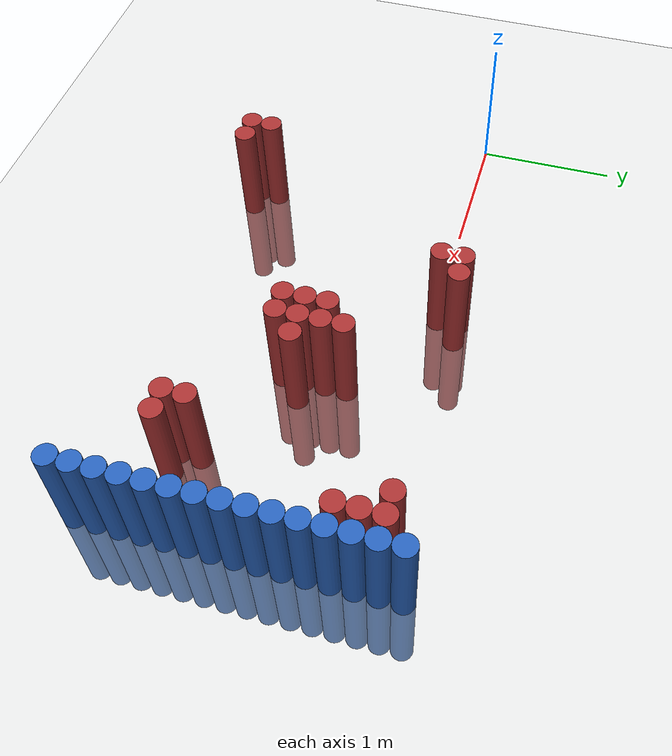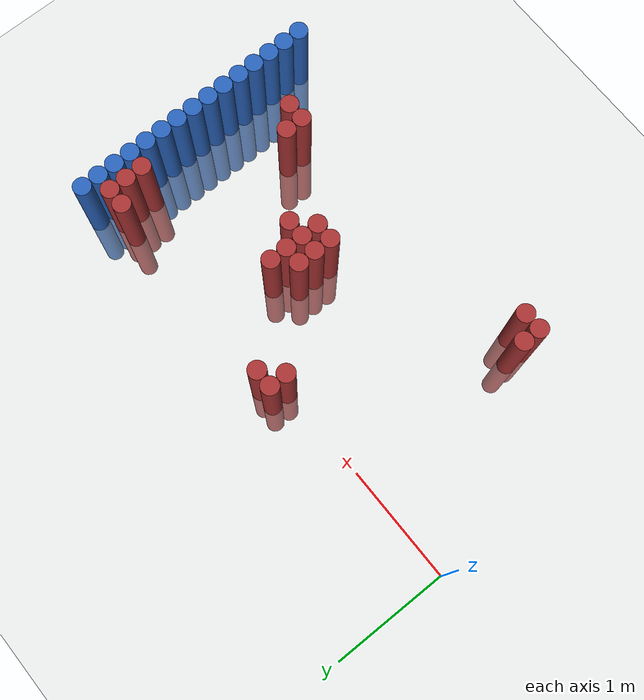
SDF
<sdf version="1.6">
 <world name="default">
  <model name="ground_plane">
   <static>1</static>
   <link name="link">
    <collision name="collision">
     <geometry><plane><normal>0 0 1</normal><size>100 100</size></plane></geometry>
     <surface><friction><ode><mu>100</mu><mu2>50</mu2></ode></friction></surface>
    </collision>
    <visual name="visual">
     <cast_shadows>0</cast_shadows>
     <geometry><plane><normal>0 0 1</normal><size>100 100</size></plane></geometry>
     <material>
      <script><uri>file://media/materials/scripts/gazebo.material</uri><name>Gazebo/Grey</name></script>
     </material>
    </visual>
   </link>
  </model>
  <model name="unit_cylinder_90">
   <static>1</static>
   <pose>3.925000 -1.775000 0.000000 0.000000 0.000000 0.000000</pose>
   <link name="link">
    <inertial>
     <mass>1</mass>
     <inertia><ixx>0.145833</ixx><ixy>0</ixy><ixz>0</ixz><iyy>0.145833</iyy><iyz>0</iyz><izz>0.125</izz></inertia>
    </inertial>
    <collision name="collision">
     <geometry><cylinder><radius>0.075000</radius><length>1.5</length></cylinder></geometry>
    </collision>
    <visual name="visual">
     <geometry><cylinder><radius>0.075000</radius><length>1.5</length></cylinder></geometry>
     <material>
      <ambient>0.152000 0.379000 0.720000 1</ambient>
      <diffuse>0.152000 0.379000 0.720000 1</diffuse>
     </material>
     <material>
      <script><name>Gazebo/Grey</name><uri>file://media/materials/scripts/gazebo.material</uri></script>
     </material>
    </visual>
   </link>
  </model>
  <model name="unit_cylinder_92">
   <static>1</static>
   <pose>3.925000 -1.625000 0.000000 0.000000 0.000000 0.000000</pose>
   <link name="link">
    <inertial>
     <mass>1</mass>
     <inertia><ixx>0.145833</ixx><ixy>0</ixy><ixz>0</ixz><iyy>0.145833</iyy><iyz>0</iyz><izz>0.125</izz></inertia>
    </inertial>
    <collision name="collision">
     <geometry><cylinder><radius>0.075000</radius><length>1.5</length></cylinder></geometry>
    </collision>
    <visual name="visual">
     <geometry><cylinder><radius>0.075000</radius><length>1.5</length></cylinder></geometry>
     <material>
      <ambient>0.152000 0.379000 0.720000 1</ambient>
      <diffuse>0.152000 0.379000 0.720000 1</diffuse>
     </material>
     <material>
      <script><name>Gazebo/Grey</name><uri>file://media/materials/scripts/gazebo.material</uri></script>
     </material>
    </visual>
   </link>
  </model>
  <model name="unit_cylinder_94">
   <static>1</static>
   <pose>3.925000 -1.475000 0.000000 0.000000 0.000000 0.000000</pose>
   <link name="link">
    <inertial>
     <mass>1</mass>
     <inertia><ixx>0.145833</ixx><ixy>0</ixy><ixz>0</ixz><iyy>0.145833</iyy><iyz>0</iyz><izz>0.125</izz></inertia>
    </inertial>
    <collision name="collision">
     <geometry><cylinder><radius>0.075000</radius><length>1.5</length></cylinder></geometry>
    </collision>
    <visual name="visual">
     <geometry><cylinder><radius>0.075000</radius><length>1.5</length></cylinder></geometry>
     <material>
      <ambient>0.152000 0.379000 0.720000 1</ambient>
      <diffuse>0.152000 0.379000 0.720000 1</diffuse>
     </material>
     <material>
      <script><name>Gazebo/Grey</name><uri>file://media/materials/scripts/gazebo.material</uri></script>
     </material>
    </visual>
   </link>
  </model>
  <model name="unit_cylinder_96">
   <static>1</static>
   <pose>3.925000 -1.325000 0.000000 0.000000 0.000000 0.000000</pose>
   <link name="link">
    <inertial>
     <mass>1</mass>
     <inertia><ixx>0.145833</ixx><ixy>0</ixy><ixz>0</ixz><iyy>0.145833</iyy><iyz>0</iyz><izz>0.125</izz></inertia>
    </inertial>
    <collision name="collision">
     <geometry><cylinder><radius>0.075000</radius><length>1.5</length></cylinder></geometry>
    </collision>
    <visual name="visual">
     <geometry><cylinder><radius>0.075000</radius><length>1.5</length></cylinder></geometry>
     <material>
      <ambient>0.152000 0.379000 0.720000 1</ambient>
      <diffuse>0.152000 0.379000 0.720000 1</diffuse>
     </material>
     <material>
      <script><name>Gazebo/Grey</name><uri>file://media/materials/scripts/gazebo.material</uri></script>
     </material>
    </visual>
   </link>
  </model>
  <model name="unit_cylinder_98">
   <static>1</static>
   <pose>3.925000 -1.175000 0.000000 0.000000 0.000000 0.000000</pose>
   <link name="link">
    <inertial>
     <mass>1</mass>
     <inertia><ixx>0.145833</ixx><ixy>0</ixy><ixz>0</ixz><iyy>0.145833</iyy><iyz>0</iyz><izz>0.125</izz></inertia>
    </inertial>
    <collision name="collision">
     <geometry><cylinder><radius>0.075000</radius><length>1.5</length></cylinder></geometry>
    </collision>
    <visual name="visual">
     <geometry><cylinder><radius>0.075000</radius><length>1.5</length></cylinder></geometry>
     <material>
      <ambient>0.152000 0.379000 0.720000 1</ambient>
      <diffuse>0.152000 0.379000 0.720000 1</diffuse>
     </material>
     <material>
      <script><name>Gazebo/Grey</name><uri>file://media/materials/scripts/gazebo.material</uri></script>
     </material>
    </visual>
   </link>
  </model>
  <model name="unit_cylinder_100">
   <static>1</static>
   <pose>3.925000 -1.025000 0.000000 0.000000 0.000000 0.000000</pose>
   <link name="link">
    <inertial>
     <mass>1</mass>
     <inertia><ixx>0.145833</ixx><ixy>0</ixy><ixz>0</ixz><iyy>0.145833</iyy><iyz>0</iyz><izz>0.125</izz></inertia>
    </inertial>
    <collision name="collision">
     <geometry><cylinder><radius>0.075000</radius><length>1.5</length></cylinder></geometry>
    </collision>
    <visual name="visual">
     <geometry><cylinder><radius>0.075000</radius><length>1.5</length></cylinder></geometry>
     <material>
      <ambient>0.152000 0.379000 0.720000 1</ambient>
      <diffuse>0.152000 0.379000 0.720000 1</diffuse>
     </material>
     <material>
      <script><name>Gazebo/Grey</name><uri>file://media/materials/scripts/gazebo.material</uri></script>
     </material>
    </visual>
   </link>
  </model>
  <model name="unit_cylinder_102">
   <static>1</static>
   <pose>3.925000 -0.875000 0.000000 0.000000 0.000000 0.000000</pose>
   <link name="link">
    <inertial>
     <mass>1</mass>
     <inertia><ixx>0.145833</ixx><ixy>0</ixy><ixz>0</ixz><iyy>0.145833</iyy><iyz>0</iyz><izz>0.125</izz></inertia>
    </inertial>
    <collision name="collision">
     <geometry><cylinder><radius>0.075000</radius><length>1.5</length></cylinder></geometry>
    </collision>
    <visual name="visual">
     <geometry><cylinder><radius>0.075000</radius><length>1.5</length></cylinder></geometry>
     <material>
      <ambient>0.152000 0.379000 0.720000 1</ambient>
      <diffuse>0.152000 0.379000 0.720000 1</diffuse>
     </material>
     <material>
      <script><name>Gazebo/Grey</name><uri>file://media/materials/scripts/gazebo.material</uri></script>
     </material>
    </visual>
   </link>
  </model>
  <model name="unit_cylinder_104">
   <static>1</static>
   <pose>3.925000 -0.725000 0.000000 0.000000 0.000000 0.000000</pose>
   <link name="link">
    <inertial>
     <mass>1</mass>
     <inertia><ixx>0.145833</ixx><ixy>0</ixy><ixz>0</ixz><iyy>0.145833</iyy><iyz>0</iyz><izz>0.125</izz></inertia>
    </inertial>
    <collision name="collision">
     <geometry><cylinder><radius>0.075000</radius><length>1.5</length></cylinder></geometry>
    </collision>
    <visual name="visual">
     <geometry><cylinder><radius>0.075000</radius><length>1.5</length></cylinder></geometry>
     <material>
      <ambient>0.152000 0.379000 0.720000 1</ambient>
      <diffuse>0.152000 0.379000 0.720000 1</diffuse>
     </material>
     <material>
      <script><name>Gazebo/Grey</name><uri>file://media/materials/scripts/gazebo.material</uri></script>
     </material>
    </visual>
   </link>
  </model>
  <model name="unit_cylinder_106">
   <static>1</static>
   <pose>3.925000 -0.575000 0.000000 0.000000 0.000000 0.000000</pose>
   <link name="link">
    <inertial>
     <mass>1</mass>
     <inertia><ixx>0.145833</ixx><ixy>0</ixy><ixz>0</ixz><iyy>0.145833</iyy><iyz>0</iyz><izz>0.125</izz></inertia>
    </inertial>
    <collision name="collision">
     <geometry><cylinder><radius>0.075000</radius><length>1.5</length></cylinder></geometry>
    </collision>
    <visual name="visual">
     <geometry><cylinder><radius>0.075000</radius><length>1.5</length></cylinder></geometry>
     <material>
      <ambient>0.152000 0.379000 0.720000 1</ambient>
      <diffuse>0.152000 0.379000 0.720000 1</diffuse>
     </material>
     <material>
      <script><name>Gazebo/Grey</name><uri>file://media/materials/scripts/gazebo.material</uri></script>
     </material>
    </visual>
   </link>
  </model>
  <model name="unit_cylinder_108">
   <static>1</static>
   <pose>3.925000 -0.425000 0.000000 0.000000 0.000000 0.000000</pose>
   <link name="link">
    <inertial>
     <mass>1</mass>
     <inertia><ixx>0.145833</ixx><ixy>0</ixy><ixz>0</ixz><iyy>0.145833</iyy><iyz>0</iyz><izz>0.125</izz></inertia>
    </inertial>
    <collision name="collision">
     <geometry><cylinder><radius>0.075000</radius><length>1.5</length></cylinder></geometry>
    </collision>
    <visual name="visual">
     <geometry><cylinder><radius>0.075000</radius><length>1.5</length></cylinder></geometry>
     <material>
      <ambient>0.152000 0.379000 0.720000 1</ambient>
      <diffuse>0.152000 0.379000 0.720000 1</diffuse>
     </material>
     <material>
      <script><name>Gazebo/Grey</name><uri>file://media/materials/scripts/gazebo.material</uri></script>
     </material>
    </visual>
   </link>
  </model>
  <model name="unit_cylinder_110">
   <static>1</static>
   <pose>3.925000 -0.275000 0.000000 0.000000 0.000000 0.000000</pose>
   <link name="link">
    <inertial>
     <mass>1</mass>
     <inertia><ixx>0.145833</ixx><ixy>0</ixy><ixz>0</ixz><iyy>0.145833</iyy><iyz>0</iyz><izz>0.125</izz></inertia>
    </inertial>
    <collision name="collision">
     <geometry><cylinder><radius>0.075000</radius><length>1.5</length></cylinder></geometry>
    </collision>
    <visual name="visual">
     <geometry><cylinder><radius>0.075000</radius><length>1.5</length></cylinder></geometry>
     <material>
      <ambient>0.152000 0.379000 0.720000 1</ambient>
      <diffuse>0.152000 0.379000 0.720000 1</diffuse>
     </material>
     <material>
      <script><name>Gazebo/Grey</name><uri>file://media/materials/scripts/gazebo.material</uri></script>
     </material>
    </visual>
   </link>
  </model>
  <model name="unit_cylinder_112">
   <static>1</static>
   <pose>3.925000 -0.125000 0.000000 0.000000 0.000000 0.000000</pose>
   <link name="link">
    <inertial>
     <mass>1</mass>
     <inertia><ixx>0.145833</ixx><ixy>0</ixy><ixz>0</ixz><iyy>0.145833</iyy><iyz>0</iyz><izz>0.125</izz></inertia>
    </inertial>
    <collision name="collision">
     <geometry><cylinder><radius>0.075000</radius><length>1.5</length></cylinder></geometry>
    </collision>
    <visual name="visual">
     <geometry><cylinder><radius>0.075000</radius><length>1.5</length></cylinder></geometry>
     <material>
      <ambient>0.152000 0.379000 0.720000 1</ambient>
      <diffuse>0.152000 0.379000 0.720000 1</diffuse>
     </material>
     <material>
      <script><name>Gazebo/Grey</name><uri>file://media/materials/scripts/gazebo.material</uri></script>
     </material>
    </visual>
   </link>
  </model>
  <model name="unit_cylinder_114">
   <static>1</static>
   <pose>3.925000 0.025000 0.000000 0.000000 0.000000 0.000000</pose>
   <link name="link">
    <inertial>
     <mass>1</mass>
     <inertia><ixx>0.145833</ixx><ixy>0</ixy><ixz>0</ixz><iyy>0.145833</iyy><iyz>0</iyz><izz>0.125</izz></inertia>
    </inertial>
    <collision name="collision">
     <geometry><cylinder><radius>0.075000</radius><length>1.5</length></cylinder></geometry>
    </collision>
    <visual name="visual">
     <geometry><cylinder><radius>0.075000</radius><length>1.5</length></cylinder></geometry>
     <material>
      <ambient>0.152000 0.379000 0.720000 1</ambient>
      <diffuse>0.152000 0.379000 0.720000 1</diffuse>
     </material>
     <material>
      <script><name>Gazebo/Grey</name><uri>file://media/materials/scripts/gazebo.material</uri></script>
     </material>
    </visual>
   </link>
  </model>
  <model name="unit_cylinder_116">
   <static>1</static>
   <pose>3.925000 0.175000 0.000000 0.000000 0.000000 0.000000</pose>
   <link name="link">
    <inertial>
     <mass>1</mass>
     <inertia><ixx>0.145833</ixx><ixy>0</ixy><ixz>0</ixz><iyy>0.145833</iyy><iyz>0</iyz><izz>0.125</izz></inertia>
    </inertial>
    <collision name="collision">
     <geometry><cylinder><radius>0.075000</radius><length>1.5</length></cylinder></geometry>
    </collision>
    <visual name="visual">
     <geometry><cylinder><radius>0.075000</radius><length>1.5</length></cylinder></geometry>
     <material>
      <ambient>0.152000 0.379000 0.720000 1</ambient>
      <diffuse>0.152000 0.379000 0.720000 1</diffuse>
     </material>
     <material>
      <script><name>Gazebo/Grey</name><uri>file://media/materials/scripts/gazebo.material</uri></script>
     </material>
    </visual>
   </link>
  </model>
  <model name="unit_cylinder_118">
   <static>1</static>
   <pose>3.925000 0.325000 0.000000 0.000000 0.000000 0.000000</pose>
   <link name="link">
    <inertial>
     <mass>1</mass>
     <inertia><ixx>0.145833</ixx><ixy>0</ixy><ixz>0</ixz><iyy>0.145833</iyy><iyz>0</iyz><izz>0.125</izz></inertia>
    </inertial>
    <collision name="collision">
     <geometry><cylinder><radius>0.075000</radius><length>1.5</length></cylinder></geometry>
    </collision>
    <visual name="visual">
     <geometry><cylinder><radius>0.075000</radius><length>1.5</length></cylinder></geometry>
     <material>
      <ambient>0.152000 0.379000 0.720000 1</ambient>
      <diffuse>0.152000 0.379000 0.720000 1</diffuse>
     </material>
     <material>
      <script><name>Gazebo/Grey</name><uri>file://media/materials/scripts/gazebo.material</uri></script>
     </material>
    </visual>
   </link>
  </model>
  <model name="unit_cylinder_344">
   <static>1</static>
   <pose>0.925000 -1.625000 0.000000 0.000000 0.000000 0.000000</pose>
   <link name="link">
    <inertial>
     <mass>1</mass>
     <inertia><ixx>0.145833</ixx><ixy>0</ixy><ixz>0</ixz><iyy>0.145833</iyy><iyz>0</iyz><izz>0.125</izz></inertia>
    </inertial>
    <collision name="collision">
     <geometry><cylinder><radius>0.075000</radius><length>1.5</length></cylinder></geometry>
    </collision>
    <visual name="visual">
     <geometry><cylinder><radius>0.075000</radius><length>1.5</length></cylinder></geometry>
     <material>
      <ambient>0.648000 0.192000 0.192000 1</ambient>
      <diffuse>0.648000 0.192000 0.192000 1</diffuse>
     </material>
     <material>
      <script><name>Gazebo/Grey</name><uri>file://media/materials/scripts/gazebo.material</uri></script>
     </material>
    </visual>
   </link>
  </model>
  <model name="unit_cylinder_345">
   <static>1</static>
   <pose>0.925000 -1.475000 0.000000 0.000000 0.000000 0.000000</pose>
   <link name="link">
    <inertial>
     <mass>1</mass>
     <inertia><ixx>0.145833</ixx><ixy>0</ixy><ixz>0</ixz><iyy>0.145833</iyy><iyz>0</iyz><izz>0.125</izz></inertia>
    </inertial>
    <collision name="collision">
     <geometry><cylinder><radius>0.075000</radius><length>1.5</length></cylinder></geometry>
    </collision>
    <visual name="visual">
     <geometry><cylinder><radius>0.075000</radius><length>1.5</length></cylinder></geometry>
     <material>
      <ambient>0.648000 0.192000 0.192000 1</ambient>
      <diffuse>0.648000 0.192000 0.192000 1</diffuse>
     </material>
     <material>
      <script><name>Gazebo/Grey</name><uri>file://media/materials/scripts/gazebo.material</uri></script>
     </material>
    </visual>
   </link>
  </model>
  <model name="unit_cylinder_347">
   <static>1</static>
   <pose>1.075000 -1.625000 0.000000 0.000000 0.000000 0.000000</pose>
   <link name="link">
    <inertial>
     <mass>1</mass>
     <inertia><ixx>0.145833</ixx><ixy>0</ixy><ixz>0</ixz><iyy>0.145833</iyy><iyz>0</iyz><izz>0.125</izz></inertia>
    </inertial>
    <collision name="collision">
     <geometry><cylinder><radius>0.075000</radius><length>1.5</length></cylinder></geometry>
    </collision>
    <visual name="visual">
     <geometry><cylinder><radius>0.075000</radius><length>1.5</length></cylinder></geometry>
     <material>
      <ambient>0.648000 0.192000 0.192000 1</ambient>
      <diffuse>0.648000 0.192000 0.192000 1</diffuse>
     </material>
     <material>
      <script><name>Gazebo/Grey</name><uri>file://media/materials/scripts/gazebo.material</uri></script>
     </material>
    </visual>
   </link>
  </model>
  <model name="unit_cylinder_351">
   <static>1</static>
   <pose>1.825000 0.025000 0.000000 0.000000 0.000000 0.000000</pose>
   <link name="link">
    <inertial>
     <mass>1</mass>
     <inertia><ixx>0.145833</ixx><ixy>0</ixy><ixz>0</ixz><iyy>0.145833</iyy><iyz>0</iyz><izz>0.125</izz></inertia>
    </inertial>
    <collision name="collision">
     <geometry><cylinder><radius>0.075000</radius><length>1.5</length></cylinder></geometry>
    </collision>
    <visual name="visual">
     <geometry><cylinder><radius>0.075000</radius><length>1.5</length></cylinder></geometry>
     <material>
      <ambient>0.648000 0.192000 0.192000 1</ambient>
      <diffuse>0.648000 0.192000 0.192000 1</diffuse>
     </material>
     <material>
      <script><name>Gazebo/Grey</name><uri>file://media/materials/scripts/gazebo.material</uri></script>
     </material>
    </visual>
   </link>
  </model>
  <model name="unit_cylinder_352">
   <static>1</static>
   <pose>1.825000 0.175000 0.000000 0.000000 0.000000 0.000000</pose>
   <link name="link">
    <inertial>
     <mass>1</mass>
     <inertia><ixx>0.145833</ixx><ixy>0</ixy><ixz>0</ixz><iyy>0.145833</iyy><iyz>0</iyz><izz>0.125</izz></inertia>
    </inertial>
    <collision name="collision">
     <geometry><cylinder><radius>0.075000</radius><length>1.5</length></cylinder></geometry>
    </collision>
    <visual name="visual">
     <geometry><cylinder><radius>0.075000</radius><length>1.5</length></cylinder></geometry>
     <material>
      <ambient>0.648000 0.192000 0.192000 1</ambient>
      <diffuse>0.648000 0.192000 0.192000 1</diffuse>
     </material>
     <material>
      <script><name>Gazebo/Grey</name><uri>file://media/materials/scripts/gazebo.material</uri></script>
     </material>
    </visual>
   </link>
  </model>
  <model name="unit_cylinder_353">
   <static>1</static>
   <pose>1.975000 0.175000 0.000000 0.000000 0.000000 0.000000</pose>
   <link name="link">
    <inertial>
     <mass>1</mass>
     <inertia><ixx>0.145833</ixx><ixy>0</ixy><ixz>0</ixz><iyy>0.145833</iyy><iyz>0</iyz><izz>0.125</izz></inertia>
    </inertial>
    <collision name="collision">
     <geometry><cylinder><radius>0.075000</radius><length>1.5</length></cylinder></geometry>
    </collision>
    <visual name="visual">
     <geometry><cylinder><radius>0.075000</radius><length>1.5</length></cylinder></geometry>
     <material>
      <ambient>0.648000 0.192000 0.192000 1</ambient>
      <diffuse>0.648000 0.192000 0.192000 1</diffuse>
     </material>
     <material>
      <script><name>Gazebo/Grey</name><uri>file://media/materials/scripts/gazebo.material</uri></script>
     </material>
    </visual>
   </link>
  </model>
  <model name="unit_cylinder_359">
   <static>1</static>
   <pose>2.425000 -0.875000 0.000000 0.000000 0.000000 0.000000</pose>
   <link name="link">
    <inertial>
     <mass>1</mass>
     <inertia><ixx>0.145833</ixx><ixy>0</ixy><ixz>0</ixz><iyy>0.145833</iyy><iyz>0</iyz><izz>0.125</izz></inertia>
    </inertial>
    <collision name="collision">
     <geometry><cylinder><radius>0.075000</radius><length>1.5</length></cylinder></geometry>
    </collision>
    <visual name="visual">
     <geometry><cylinder><radius>0.075000</radius><length>1.5</length></cylinder></geometry>
     <material>
      <ambient>0.648000 0.192000 0.192000 1</ambient>
      <diffuse>0.648000 0.192000 0.192000 1</diffuse>
     </material>
     <material>
      <script><name>Gazebo/Grey</name><uri>file://media/materials/scripts/gazebo.material</uri></script>
     </material>
    </visual>
   </link>
  </model>
  <model name="unit_cylinder_360">
   <static>1</static>
   <pose>2.425000 -0.725000 0.000000 0.000000 0.000000 0.000000</pose>
   <link name="link">
    <inertial>
     <mass>1</mass>
     <inertia><ixx>0.145833</ixx><ixy>0</ixy><ixz>0</ixz><iyy>0.145833</iyy><iyz>0</iyz><izz>0.125</izz></inertia>
    </inertial>
    <collision name="collision">
     <geometry><cylinder><radius>0.075000</radius><length>1.5</length></cylinder></geometry>
    </collision>
    <visual name="visual">
     <geometry><cylinder><radius>0.075000</radius><length>1.5</length></cylinder></geometry>
     <material>
      <ambient>0.648000 0.192000 0.192000 1</ambient>
      <diffuse>0.648000 0.192000 0.192000 1</diffuse>
     </material>
     <material>
      <script><name>Gazebo/Grey</name><uri>file://media/materials/scripts/gazebo.material</uri></script>
     </material>
    </visual>
   </link>
  </model>
  <model name="unit_cylinder_361">
   <static>1</static>
   <pose>2.425000 -0.575000 0.000000 0.000000 0.000000 0.000000</pose>
   <link name="link">
    <inertial>
     <mass>1</mass>
     <inertia><ixx>0.145833</ixx><ixy>0</ixy><ixz>0</ixz><iyy>0.145833</iyy><iyz>0</iyz><izz>0.125</izz></inertia>
    </inertial>
    <collision name="collision">
     <geometry><cylinder><radius>0.075000</radius><length>1.5</length></cylinder></geometry>
    </collision>
    <visual name="visual">
     <geometry><cylinder><radius>0.075000</radius><length>1.5</length></cylinder></geometry>
     <material>
      <ambient>0.648000 0.192000 0.192000 1</ambient>
      <diffuse>0.648000 0.192000 0.192000 1</diffuse>
     </material>
     <material>
      <script><name>Gazebo/Grey</name><uri>file://media/materials/scripts/gazebo.material</uri></script>
     </material>
    </visual>
   </link>
  </model>
  <model name="unit_cylinder_365">
   <static>1</static>
   <pose>2.575000 -0.875000 0.000000 0.000000 0.000000 0.000000</pose>
   <link name="link">
    <inertial>
     <mass>1</mass>
     <inertia><ixx>0.145833</ixx><ixy>0</ixy><ixz>0</ixz><iyy>0.145833</iyy><iyz>0</iyz><izz>0.125</izz></inertia>
    </inertial>
    <collision name="collision">
     <geometry><cylinder><radius>0.075000</radius><length>1.5</length></cylinder></geometry>
    </collision>
    <visual name="visual">
     <geometry><cylinder><radius>0.075000</radius><length>1.5</length></cylinder></geometry>
     <material>
      <ambient>0.648000 0.192000 0.192000 1</ambient>
      <diffuse>0.648000 0.192000 0.192000 1</diffuse>
     </material>
     <material>
      <script><name>Gazebo/Grey</name><uri>file://media/materials/scripts/gazebo.material</uri></script>
     </material>
    </visual>
   </link>
  </model>
  <model name="unit_cylinder_366">
   <static>1</static>
   <pose>2.575000 -0.725000 0.000000 0.000000 0.000000 0.000000</pose>
   <link name="link">
    <inertial>
     <mass>1</mass>
     <inertia><ixx>0.145833</ixx><ixy>0</ixy><ixz>0</ixz><iyy>0.145833</iyy><iyz>0</iyz><izz>0.125</izz></inertia>
    </inertial>
    <collision name="collision">
     <geometry><cylinder><radius>0.075000</radius><length>1.5</length></cylinder></geometry>
    </collision>
    <visual name="visual">
     <geometry><cylinder><radius>0.075000</radius><length>1.5</length></cylinder></geometry>
     <material>
      <ambient>0.648000 0.192000 0.192000 1</ambient>
      <diffuse>0.648000 0.192000 0.192000 1</diffuse>
     </material>
     <material>
      <script><name>Gazebo/Grey</name><uri>file://media/materials/scripts/gazebo.material</uri></script>
     </material>
    </visual>
   </link>
  </model>
  <model name="unit_cylinder_367">
   <static>1</static>
   <pose>2.575000 -0.575000 0.000000 0.000000 0.000000 0.000000</pose>
   <link name="link">
    <inertial>
     <mass>1</mass>
     <inertia><ixx>0.145833</ixx><ixy>0</ixy><ixz>0</ixz><iyy>0.145833</iyy><iyz>0</iyz><izz>0.125</izz></inertia>
    </inertial>
    <collision name="collision">
     <geometry><cylinder><radius>0.075000</radius><length>1.5</length></cylinder></geometry>
    </collision>
    <visual name="visual">
     <geometry><cylinder><radius>0.075000</radius><length>1.5</length></cylinder></geometry>
     <material>
      <ambient>0.648000 0.192000 0.192000 1</ambient>
      <diffuse>0.648000 0.192000 0.192000 1</diffuse>
     </material>
     <material>
      <script><name>Gazebo/Grey</name><uri>file://media/materials/scripts/gazebo.material</uri></script>
     </material>
    </visual>
   </link>
  </model>
  <model name="unit_cylinder_368">
   <static>1</static>
   <pose>2.575000 -0.425000 0.000000 0.000000 0.000000 0.000000</pose>
   <link name="link">
    <inertial>
     <mass>1</mass>
     <inertia><ixx>0.145833</ixx><ixy>0</ixy><ixz>0</ixz><iyy>0.145833</iyy><iyz>0</iyz><izz>0.125</izz></inertia>
    </inertial>
    <collision name="collision">
     <geometry><cylinder><radius>0.075000</radius><length>1.5</length></cylinder></geometry>
    </collision>
    <visual name="visual">
     <geometry><cylinder><radius>0.075000</radius><length>1.5</length></cylinder></geometry>
     <material>
      <ambient>0.648000 0.192000 0.192000 1</ambient>
      <diffuse>0.648000 0.192000 0.192000 1</diffuse>
     </material>
     <material>
      <script><name>Gazebo/Grey</name><uri>file://media/materials/scripts/gazebo.material</uri></script>
     </material>
    </visual>
   </link>
  </model>
  <model name="unit_cylinder_370">
   <static>1</static>
   <pose>2.725000 -0.725000 0.000000 0.000000 0.000000 0.000000</pose>
   <link name="link">
    <inertial>
     <mass>1</mass>
     <inertia><ixx>0.145833</ixx><ixy>0</ixy><ixz>0</ixz><iyy>0.145833</iyy><iyz>0</iyz><izz>0.125</izz></inertia>
    </inertial>
    <collision name="collision">
     <geometry><cylinder><radius>0.075000</radius><length>1.5</length></cylinder></geometry>
    </collision>
    <visual name="visual">
     <geometry><cylinder><radius>0.075000</radius><length>1.5</length></cylinder></geometry>
     <material>
      <ambient>0.648000 0.192000 0.192000 1</ambient>
      <diffuse>0.648000 0.192000 0.192000 1</diffuse>
     </material>
     <material>
      <script><name>Gazebo/Grey</name><uri>file://media/materials/scripts/gazebo.material</uri></script>
     </material>
    </visual>
   </link>
  </model>
  <model name="unit_cylinder_375">
   <static>1</static>
   <pose>3.325000 -1.325000 0.000000 0.000000 0.000000 0.000000</pose>
   <link name="link">
    <inertial>
     <mass>1</mass>
     <inertia><ixx>0.145833</ixx><ixy>0</ixy><ixz>0</ixz><iyy>0.145833</iyy><iyz>0</iyz><izz>0.125</izz></inertia>
    </inertial>
    <collision name="collision">
     <geometry><cylinder><radius>0.075000</radius><length>1.5</length></cylinder></geometry>
    </collision>
    <visual name="visual">
     <geometry><cylinder><radius>0.075000</radius><length>1.5</length></cylinder></geometry>
     <material>
      <ambient>0.648000 0.192000 0.192000 1</ambient>
      <diffuse>0.648000 0.192000 0.192000 1</diffuse>
     </material>
     <material>
      <script><name>Gazebo/Grey</name><uri>file://media/materials/scripts/gazebo.material</uri></script>
     </material>
    </visual>
   </link>
  </model>
  <model name="unit_cylinder_376">
   <static>1</static>
   <pose>3.325000 -1.175000 0.000000 0.000000 0.000000 0.000000</pose>
   <link name="link">
    <inertial>
     <mass>1</mass>
     <inertia><ixx>0.145833</ixx><ixy>0</ixy><ixz>0</ixz><iyy>0.145833</iyy><iyz>0</iyz><izz>0.125</izz></inertia>
    </inertial>
    <collision name="collision">
     <geometry><cylinder><radius>0.075000</radius><length>1.5</length></cylinder></geometry>
    </collision>
    <visual name="visual">
     <geometry><cylinder><radius>0.075000</radius><length>1.5</length></cylinder></geometry>
     <material>
      <ambient>0.648000 0.192000 0.192000 1</ambient>
      <diffuse>0.648000 0.192000 0.192000 1</diffuse>
     </material>
     <material>
      <script><name>Gazebo/Grey</name><uri>file://media/materials/scripts/gazebo.material</uri></script>
     </material>
    </visual>
   </link>
  </model>
  <model name="unit_cylinder_379">
   <static>1</static>
   <pose>3.475000 -1.325000 0.000000 0.000000 0.000000 0.000000</pose>
   <link name="link">
    <inertial>
     <mass>1</mass>
     <inertia><ixx>0.145833</ixx><ixy>0</ixy><ixz>0</ixz><iyy>0.145833</iyy><iyz>0</iyz><izz>0.125</izz></inertia>
    </inertial>
    <collision name="collision">
     <geometry><cylinder><radius>0.075000</radius><length>1.5</length></cylinder></geometry>
    </collision>
    <visual name="visual">
     <geometry><cylinder><radius>0.075000</radius><length>1.5</length></cylinder></geometry>
     <material>
      <ambient>0.648000 0.192000 0.192000 1</ambient>
      <diffuse>0.648000 0.192000 0.192000 1</diffuse>
     </material>
     <material>
      <script><name>Gazebo/Grey</name><uri>file://media/materials/scripts/gazebo.material</uri></script>
     </material>
    </visual>
   </link>
  </model>
  <model name="unit_cylinder_380">
   <static>1</static>
   <pose>3.625000 0.175000 0.000000 0.000000 0.000000 0.000000</pose>
   <link name="link">
    <inertial>
     <mass>1</mass>
     <inertia><ixx>0.145833</ixx><ixy>0</ixy><ixz>0</ixz><iyy>0.145833</iyy><iyz>0</iyz><izz>0.125</izz></inertia>
    </inertial>
    <collision name="collision">
     <geometry><cylinder><radius>0.075000</radius><length>1.5</length></cylinder></geometry>
    </collision>
    <visual name="visual">
     <geometry><cylinder><radius>0.075000</radius><length>1.5</length></cylinder></geometry>
     <material>
      <ambient>0.648000 0.192000 0.192000 1</ambient>
      <diffuse>0.648000 0.192000 0.192000 1</diffuse>
     </material>
     <material>
      <script><name>Gazebo/Grey</name><uri>file://media/materials/scripts/gazebo.material</uri></script>
     </material>
    </visual>
   </link>
  </model>
  <model name="unit_cylinder_382">
   <static>1</static>
   <pose>3.775000 -0.125000 0.000000 0.000000 0.000000 0.000000</pose>
   <link name="link">
    <inertial>
     <mass>1</mass>
     <inertia><ixx>0.145833</ixx><ixy>0</ixy><ixz>0</ixz><iyy>0.145833</iyy><iyz>0</iyz><izz>0.125</izz></inertia>
    </inertial>
    <collision name="collision">
     <geometry><cylinder><radius>0.075000</radius><length>1.5</length></cylinder></geometry>
    </collision>
    <visual name="visual">
     <geometry><cylinder><radius>0.075000</radius><length>1.5</length></cylinder></geometry>
     <material>
      <ambient>0.648000 0.192000 0.192000 1</ambient>
      <diffuse>0.648000 0.192000 0.192000 1</diffuse>
     </material>
     <material>
      <script><name>Gazebo/Grey</name><uri>file://media/materials/scripts/gazebo.material</uri></script>
     </material>
    </visual>
   </link>
  </model>
  <model name="unit_cylinder_383">
   <static>1</static>
   <pose>3.775000 0.025000 0.000000 0.000000 0.000000 0.000000</pose>
   <link name="link">
    <inertial>
     <mass>1</mass>
     <inertia><ixx>0.145833</ixx><ixy>0</ixy><ixz>0</ixz><iyy>0.145833</iyy><iyz>0</iyz><izz>0.125</izz></inertia>
    </inertial>
    <collision name="collision">
     <geometry><cylinder><radius>0.075000</radius><length>1.5</length></cylinder></geometry>
    </collision>
    <visual name="visual">
     <geometry><cylinder><radius>0.075000</radius><length>1.5</length></cylinder></geometry>
     <material>
      <ambient>0.648000 0.192000 0.192000 1</ambient>
      <diffuse>0.648000 0.192000 0.192000 1</diffuse>
     </material>
     <material>
      <script><name>Gazebo/Grey</name><uri>file://media/materials/scripts/gazebo.material</uri></script>
     </material>
    </visual>
   </link>
  </model>
  <model name="unit_cylinder_384">
   <static>1</static>
   <pose>3.775000 0.175000 0.000000 0.000000 0.000000 0.000000</pose>
   <link name="link">
    <inertial>
     <mass>1</mass>
     <inertia><ixx>0.145833</ixx><ixy>0</ixy><ixz>0</ixz><iyy>0.145833</iyy><iyz>0</iyz><izz>0.125</izz></inertia>
    </inertial>
    <collision name="collision">
     <geometry><cylinder><radius>0.075000</radius><length>1.5</length></cylinder></geometry>
    </collision>
    <visual name="visual">
     <geometry><cylinder><radius>0.075000</radius><length>1.5</length></cylinder></geometry>
     <material>
      <ambient>0.648000 0.192000 0.192000 1</ambient>
      <diffuse>0.648000 0.192000 0.192000 1</diffuse>
     </material>
     <material>
      <script><name>Gazebo/Grey</name><uri>file://media/materials/scripts/gazebo.material</uri></script>
     </material>
    </visual>
   </link>
  </model>
  <model name="unit_cylinder_400">
   <static>1</static>
   <pose>3.925000 -1.775000 0.000000 0.000000 0.000000 0.000000</pose>
   <link name="link">
    <inertial>
     <mass>1</mass>
     <inertia><ixx>0.145833</ixx><ixy>0</ixy><ixz>0</ixz><iyy>0.145833</iyy><iyz>0</iyz><izz>0.125</izz></inertia>
    </inertial>
    <collision name="collision">
     <geometry><cylinder><radius>0.075000</radius><length>1.5</length></cylinder></geometry>
    </collision>
    <visual name="visual">
     <geometry><cylinder><radius>0.075000</radius><length>1.5</length></cylinder></geometry>
     <material>
      <ambient>0.152000 0.379000 0.720000 1</ambient>
      <diffuse>0.152000 0.379000 0.720000 1</diffuse>
     </material>
     <material>
      <script><name>Gazebo/Grey</name><uri>file://media/materials/scripts/gazebo.material</uri></script>
     </material>
    </visual>
   </link>
  </model>
  <model name="unit_cylinder_401">
   <static>1</static>
   <pose>3.925000 -1.625000 0.000000 0.000000 0.000000 0.000000</pose>
   <link name="link">
    <inertial>
     <mass>1</mass>
     <inertia><ixx>0.145833</ixx><ixy>0</ixy><ixz>0</ixz><iyy>0.145833</iyy><iyz>0</iyz><izz>0.125</izz></inertia>
    </inertial>
    <collision name="collision">
     <geometry><cylinder><radius>0.075000</radius><length>1.5</length></cylinder></geometry>
    </collision>
    <visual name="visual">
     <geometry><cylinder><radius>0.075000</radius><length>1.5</length></cylinder></geometry>
     <material>
      <ambient>0.152000 0.379000 0.720000 1</ambient>
      <diffuse>0.152000 0.379000 0.720000 1</diffuse>
     </material>
     <material>
      <script><name>Gazebo/Grey</name><uri>file://media/materials/scripts/gazebo.material</uri></script>
     </material>
    </visual>
   </link>
  </model>
  <model name="unit_cylinder_402">
   <static>1</static>
   <pose>3.925000 -1.475000 0.000000 0.000000 0.000000 0.000000</pose>
   <link name="link">
    <inertial>
     <mass>1</mass>
     <inertia><ixx>0.145833</ixx><ixy>0</ixy><ixz>0</ixz><iyy>0.145833</iyy><iyz>0</iyz><izz>0.125</izz></inertia>
    </inertial>
    <collision name="collision">
     <geometry><cylinder><radius>0.075000</radius><length>1.5</length></cylinder></geometry>
    </collision>
    <visual name="visual">
     <geometry><cylinder><radius>0.075000</radius><length>1.5</length></cylinder></geometry>
     <material>
      <ambient>0.152000 0.379000 0.720000 1</ambient>
      <diffuse>0.152000 0.379000 0.720000 1</diffuse>
     </material>
     <material>
      <script><name>Gazebo/Grey</name><uri>file://media/materials/scripts/gazebo.material</uri></script>
     </material>
    </visual>
   </link>
  </model>
  <model name="unit_cylinder_403">
   <static>1</static>
   <pose>3.925000 -1.325000 0.000000 0.000000 0.000000 0.000000</pose>
   <link name="link">
    <inertial>
     <mass>1</mass>
     <inertia><ixx>0.145833</ixx><ixy>0</ixy><ixz>0</ixz><iyy>0.145833</iyy><iyz>0</iyz><izz>0.125</izz></inertia>
    </inertial>
    <collision name="collision">
     <geometry><cylinder><radius>0.075000</radius><length>1.5</length></cylinder></geometry>
    </collision>
    <visual name="visual">
     <geometry><cylinder><radius>0.075000</radius><length>1.5</length></cylinder></geometry>
     <material>
      <ambient>0.152000 0.379000 0.720000 1</ambient>
      <diffuse>0.152000 0.379000 0.720000 1</diffuse>
     </material>
     <material>
      <script><name>Gazebo/Grey</name><uri>file://media/materials/scripts/gazebo.material</uri></script>
     </material>
    </visual>
   </link>
  </model>
  <model name="unit_cylinder_404">
   <static>1</static>
   <pose>3.925000 -1.175000 0.000000 0.000000 0.000000 0.000000</pose>
   <link name="link">
    <inertial>
     <mass>1</mass>
     <inertia><ixx>0.145833</ixx><ixy>0</ixy><ixz>0</ixz><iyy>0.145833</iyy><iyz>0</iyz><izz>0.125</izz></inertia>
    </inertial>
    <collision name="collision">
     <geometry><cylinder><radius>0.075000</radius><length>1.5</length></cylinder></geometry>
    </collision>
    <visual name="visual">
     <geometry><cylinder><radius>0.075000</radius><length>1.5</length></cylinder></geometry>
     <material>
      <ambient>0.152000 0.379000 0.720000 1</ambient>
      <diffuse>0.152000 0.379000 0.720000 1</diffuse>
     </material>
     <material>
      <script><name>Gazebo/Grey</name><uri>file://media/materials/scripts/gazebo.material</uri></script>
     </material>
    </visual>
   </link>
  </model>
  <model name="unit_cylinder_405">
   <static>1</static>
   <pose>3.925000 -1.025000 0.000000 0.000000 0.000000 0.000000</pose>
   <link name="link">
    <inertial>
     <mass>1</mass>
     <inertia><ixx>0.145833</ixx><ixy>0</ixy><ixz>0</ixz><iyy>0.145833</iyy><iyz>0</iyz><izz>0.125</izz></inertia>
    </inertial>
    <collision name="collision">
     <geometry><cylinder><radius>0.075000</radius><length>1.5</length></cylinder></geometry>
    </collision>
    <visual name="visual">
     <geometry><cylinder><radius>0.075000</radius><length>1.5</length></cylinder></geometry>
     <material>
      <ambient>0.152000 0.379000 0.720000 1</ambient>
      <diffuse>0.152000 0.379000 0.720000 1</diffuse>
     </material>
     <material>
      <script><name>Gazebo/Grey</name><uri>file://media/materials/scripts/gazebo.material</uri></script>
     </material>
    </visual>
   </link>
  </model>
  <model name="unit_cylinder_406">
   <static>1</static>
   <pose>3.925000 -0.875000 0.000000 0.000000 0.000000 0.000000</pose>
   <link name="link">
    <inertial>
     <mass>1</mass>
     <inertia><ixx>0.145833</ixx><ixy>0</ixy><ixz>0</ixz><iyy>0.145833</iyy><iyz>0</iyz><izz>0.125</izz></inertia>
    </inertial>
    <collision name="collision">
     <geometry><cylinder><radius>0.075000</radius><length>1.5</length></cylinder></geometry>
    </collision>
    <visual name="visual">
     <geometry><cylinder><radius>0.075000</radius><length>1.5</length></cylinder></geometry>
     <material>
      <ambient>0.152000 0.379000 0.720000 1</ambient>
      <diffuse>0.152000 0.379000 0.720000 1</diffuse>
     </material>
     <material>
      <script><name>Gazebo/Grey</name><uri>file://media/materials/scripts/gazebo.material</uri></script>
     </material>
    </visual>
   </link>
  </model>
  <model name="unit_cylinder_407">
   <static>1</static>
   <pose>3.925000 -0.725000 0.000000 0.000000 0.000000 0.000000</pose>
   <link name="link">
    <inertial>
     <mass>1</mass>
     <inertia><ixx>0.145833</ixx><ixy>0</ixy><ixz>0</ixz><iyy>0.145833</iyy><iyz>0</iyz><izz>0.125</izz></inertia>
    </inertial>
    <collision name="collision">
     <geometry><cylinder><radius>0.075000</radius><length>1.5</length></cylinder></geometry>
    </collision>
    <visual name="visual">
     <geometry><cylinder><radius>0.075000</radius><length>1.5</length></cylinder></geometry>
     <material>
      <ambient>0.152000 0.379000 0.720000 1</ambient>
      <diffuse>0.152000 0.379000 0.720000 1</diffuse>
     </material>
     <material>
      <script><name>Gazebo/Grey</name><uri>file://media/materials/scripts/gazebo.material</uri></script>
     </material>
    </visual>
   </link>
  </model>
  <model name="unit_cylinder_408">
   <static>1</static>
   <pose>3.925000 -0.575000 0.000000 0.000000 0.000000 0.000000</pose>
   <link name="link">
    <inertial>
     <mass>1</mass>
     <inertia><ixx>0.145833</ixx><ixy>0</ixy><ixz>0</ixz><iyy>0.145833</iyy><iyz>0</iyz><izz>0.125</izz></inertia>
    </inertial>
    <collision name="collision">
     <geometry><cylinder><radius>0.075000</radius><length>1.5</length></cylinder></geometry>
    </collision>
    <visual name="visual">
     <geometry><cylinder><radius>0.075000</radius><length>1.5</length></cylinder></geometry>
     <material>
      <ambient>0.152000 0.379000 0.720000 1</ambient>
      <diffuse>0.152000 0.379000 0.720000 1</diffuse>
     </material>
     <material>
      <script><name>Gazebo/Grey</name><uri>file://media/materials/scripts/gazebo.material</uri></script>
     </material>
    </visual>
   </link>
  </model>
  <model name="unit_cylinder_409">
   <static>1</static>
   <pose>3.925000 -0.425000 0.000000 0.000000 0.000000 0.000000</pose>
   <link name="link">
    <inertial>
     <mass>1</mass>
     <inertia><ixx>0.145833</ixx><ixy>0</ixy><ixz>0</ixz><iyy>0.145833</iyy><iyz>0</iyz><izz>0.125</izz></inertia>
    </inertial>
    <collision name="collision">
     <geometry><cylinder><radius>0.075000</radius><length>1.5</length></cylinder></geometry>
    </collision>
    <visual name="visual">
     <geometry><cylinder><radius>0.075000</radius><length>1.5</length></cylinder></geometry>
     <material>
      <ambient>0.152000 0.379000 0.720000 1</ambient>
      <diffuse>0.152000 0.379000 0.720000 1</diffuse>
     </material>
     <material>
      <script><name>Gazebo/Grey</name><uri>file://media/materials/scripts/gazebo.material</uri></script>
     </material>
    </visual>
   </link>
  </model>
  <model name="unit_cylinder_410">
   <static>1</static>
   <pose>3.925000 -0.275000 0.000000 0.000000 0.000000 0.000000</pose>
   <link name="link">
    <inertial>
     <mass>1</mass>
     <inertia><ixx>0.145833</ixx><ixy>0</ixy><ixz>0</ixz><iyy>0.145833</iyy><iyz>0</iyz><izz>0.125</izz></inertia>
    </inertial>
    <collision name="collision">
     <geometry><cylinder><radius>0.075000</radius><length>1.5</length></cylinder></geometry>
    </collision>
    <visual name="visual">
     <geometry><cylinder><radius>0.075000</radius><length>1.5</length></cylinder></geometry>
     <material>
      <ambient>0.152000 0.379000 0.720000 1</ambient>
      <diffuse>0.152000 0.379000 0.720000 1</diffuse>
     </material>
     <material>
      <script><name>Gazebo/Grey</name><uri>file://media/materials/scripts/gazebo.material</uri></script>
     </material>
    </visual>
   </link>
  </model>
  <model name="unit_cylinder_411">
   <static>1</static>
   <pose>3.925000 -0.125000 0.000000 0.000000 0.000000 0.000000</pose>
   <link name="link">
    <inertial>
     <mass>1</mass>
     <inertia><ixx>0.145833</ixx><ixy>0</ixy><ixz>0</ixz><iyy>0.145833</iyy><iyz>0</iyz><izz>0.125</izz></inertia>
    </inertial>
    <collision name="collision">
     <geometry><cylinder><radius>0.075000</radius><length>1.5</length></cylinder></geometry>
    </collision>
    <visual name="visual">
     <geometry><cylinder><radius>0.075000</radius><length>1.5</length></cylinder></geometry>
     <material>
      <ambient>0.152000 0.379000 0.720000 1</ambient>
      <diffuse>0.152000 0.379000 0.720000 1</diffuse>
     </material>
     <material>
      <script><name>Gazebo/Grey</name><uri>file://media/materials/scripts/gazebo.material</uri></script>
     </material>
    </visual>
   </link>
  </model>
  <model name="unit_cylinder_412">
   <static>1</static>
   <pose>3.925000 0.025000 0.000000 0.000000 0.000000 0.000000</pose>
   <link name="link">
    <inertial>
     <mass>1</mass>
     <inertia><ixx>0.145833</ixx><ixy>0</ixy><ixz>0</ixz><iyy>0.145833</iyy><iyz>0</iyz><izz>0.125</izz></inertia>
    </inertial>
    <collision name="collision">
     <geometry><cylinder><radius>0.075000</radius><length>1.5</length></cylinder></geometry>
    </collision>
    <visual name="visual">
     <geometry><cylinder><radius>0.075000</radius><length>1.5</length></cylinder></geometry>
     <material>
      <ambient>0.152000 0.379000 0.720000 1</ambient>
      <diffuse>0.152000 0.379000 0.720000 1</diffuse>
     </material>
     <material>
      <script><name>Gazebo/Grey</name><uri>file://media/materials/scripts/gazebo.material</uri></script>
     </material>
    </visual>
   </link>
  </model>
  <model name="unit_cylinder_413">
   <static>1</static>
   <pose>3.925000 0.175000 0.000000 0.000000 0.000000 0.000000</pose>
   <link name="link">
    <inertial>
     <mass>1</mass>
     <inertia><ixx>0.145833</ixx><ixy>0</ixy><ixz>0</ixz><iyy>0.145833</iyy><iyz>0</iyz><izz>0.125</izz></inertia>
    </inertial>
    <collision name="collision">
     <geometry><cylinder><radius>0.075000</radius><length>1.5</length></cylinder></geometry>
    </collision>
    <visual name="visual">
     <geometry><cylinder><radius>0.075000</radius><length>1.5</length></cylinder></geometry>
     <material>
      <ambient>0.152000 0.379000 0.720000 1</ambient>
      <diffuse>0.152000 0.379000 0.720000 1</diffuse>
     </material>
     <material>
      <script><name>Gazebo/Grey</name><uri>file://media/materials/scripts/gazebo.material</uri></script>
     </material>
    </visual>
   </link>
  </model>
 </world>
</sdf>
